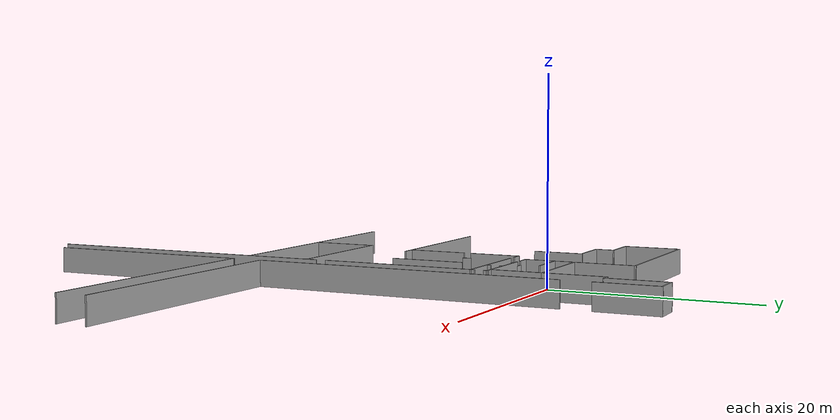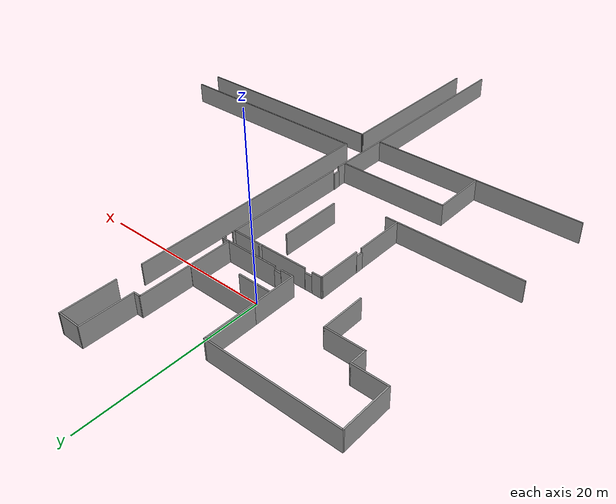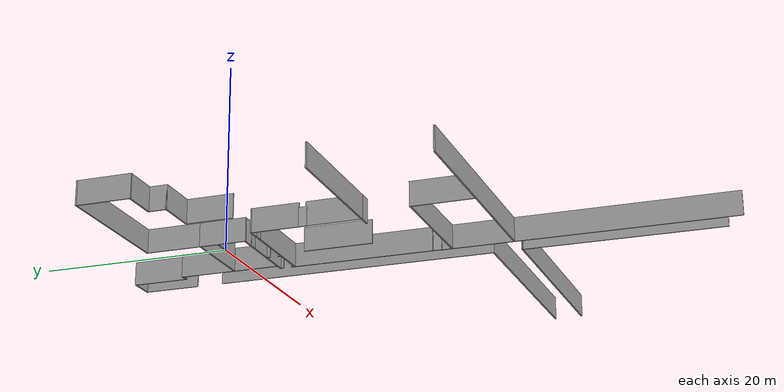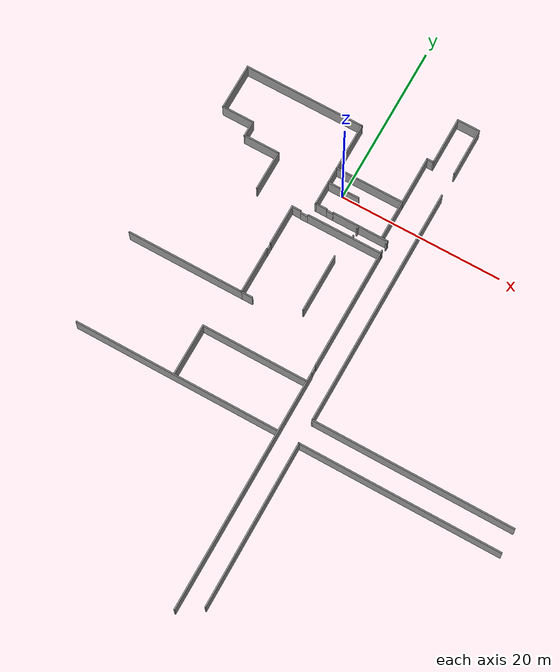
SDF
<?xml version='1.0'?>
<sdf version='1.6'>
  <model name='uia_utsnitt'>
    <pose frame=''>8.2575 -18.3173 0 0 -0 0</pose>
    <link name='Door_0'>
      <collision name='Door_0_Collision'>
        <geometry>
          <box>
            <size>0.85 0.17 2.1</size>
          </box>
        </geometry>
        <pose frame=''>0 0 1.05 0 -0 0</pose>
      </collision>
      <visual name='Door_0_Visual'>
        <pose frame=''>0 0 1.05 0 -0 0</pose>
        <geometry>
          <box>
            <size>0.85 0.17 2.1</size>
          </box>
        </geometry>
        <material>
          <script>
            <uri>file://media/materials/scripts/gazebo.material</uri>
            <name>Gazebo/Grey</name>
          </script>
        </material>
      </visual>
      <pose frame=''>-8.28427 15.3973 0 0 -0 3.11942</pose>
    </link>
    <link name='Door_1'>
      <collision name='Door_1_Collision'>
        <geometry>
          <box>
            <size>0.9 0.17 2</size>
          </box>
        </geometry>
        <pose frame=''>0 0 1 0 -0 0</pose>
      </collision>
      <visual name='Door_1_Visual'>
        <pose frame=''>0 0 1 0 -0 0</pose>
        <geometry>
          <box>
            <size>0.9 0.17 2</size>
          </box>
        </geometry>
        <material>
          <script>
            <uri>file://media/materials/scripts/gazebo.material</uri>
            <name>Gazebo/Grey</name>
          </script>
        </material>
      </visual>
      <pose frame=''>-10.6705 13.7791 0 0 -0 0</pose>
    </link>
    <link name='Door_2'>
      <collision name='Door_2_Collision'>
        <geometry>
          <box>
            <size>0.9 0.17 2</size>
          </box>
        </geometry>
        <pose frame=''>0 0 1 0 -0 0</pose>
      </collision>
      <visual name='Door_2_Visual'>
        <pose frame=''>0 0 1 0 -0 0</pose>
        <geometry>
          <box>
            <size>0.9 0.17 2</size>
          </box>
        </geometry>
        <material>
          <script>
            <uri>file://media/materials/scripts/gazebo.material</uri>
            <name>Gazebo/Grey</name>
          </script>
        </material>
      </visual>
      <pose frame=''>-12.2575 8.3993 0 0 -0 -1.55636</pose>
    </link>
    <link name='Door_3'>
      <collision name='Door_3_Collision'>
        <geometry>
          <box>
            <size>0.9 0.17 2</size>
          </box>
        </geometry>
        <pose frame=''>0 0 1 0 -0 0</pose>
      </collision>
      <visual name='Door_3_Visual'>
        <pose frame=''>0 0 1 0 -0 0</pose>
        <geometry>
          <box>
            <size>0.9 0.17 2</size>
          </box>
        </geometry>
        <material>
          <script>
            <uri>file://media/materials/scripts/gazebo.material</uri>
            <name>Gazebo/Grey</name>
          </script>
        </material>
      </visual>
      <pose frame=''>-0.985614 -1.64108 0 0 -0 1.63736</pose>
    </link>
    <link name='Wall_0'>
      <collision name='Wall_0_Collision'>
        <geometry>
          <box>
            <size>7 0.15 2.5</size>
          </box>
        </geometry>
        <pose frame=''>0 0 1.25 0 -0 0</pose>
      </collision>
      <visual name='Wall_0_Visual'>
        <pose frame=''>0 0 1.25 0 -0 0</pose>
        <geometry>
          <box>
            <size>7 0.15 2.5</size>
          </box>
        </geometry>
        <material>
          <script>
            <uri>file://media/materials/scripts/gazebo.material</uri>
            <name>Gazebo/Grey</name>
          </script>
          <ambient>1 1 1 1</ambient>
        </material>
        <meta>
          <layer>0</layer>
        </meta>
      </visual>
      <pose frame=''>-4.40229 15.3924 0 0 -0 -3.6e-05</pose>
    </link>
    <link name='Wall_101'>
      <collision name='Wall_101_Collision'>
        <geometry>
          <box>
            <size>20.6531 0.15 2.5</size>
          </box>
        </geometry>
        <pose frame=''>0 0 1.25 0 -0 0</pose>
      </collision>
      <visual name='Wall_101_Visual'>
        <pose frame=''>0 0 1.25 0 -0 0</pose>
        <geometry>
          <box>
            <size>20.6531 0.15 2.5</size>
          </box>
        </geometry>
        <material>
          <script>
            <uri>file://media/materials/scripts/gazebo.material</uri>
            <name>Gazebo/Grey</name>
          </script>
          <ambient>1 1 1 1</ambient>
        </material>
        <meta>
          <layer>0</layer>
        </meta>
      </visual>
      <pose frame=''>1.78602 -19.9342 0 0 -0 -1.56655</pose>
    </link>
    <link name='Wall_105'>
      <collision name='Wall_105_Collision'>
        <geometry>
          <box>
            <size>5.832 0.15 2.5</size>
          </box>
        </geometry>
        <pose frame=''>0 0 1.25 0 -0 0</pose>
      </collision>
      <visual name='Wall_105_Visual'>
        <pose frame=''>0 0 1.25 0 -0 0</pose>
        <geometry>
          <box>
            <size>5.832 0.15 2.5</size>
          </box>
        </geometry>
        <material>
          <script>
            <uri>file://media/materials/scripts/gazebo.material</uri>
            <name>Gazebo/Grey</name>
          </script>
          <ambient>1 1 1 1</ambient>
        </material>
        <meta>
          <layer>0</layer>
        </meta>
      </visual>
      <pose frame=''>-12.2575 5.1583 0 0 -0 -1.5708</pose>
    </link>
    <link name='Wall_107'>
      <collision name='Wall_107_Collision'>
        <geometry>
          <box>
            <size>30 0.15 2.5</size>
          </box>
        </geometry>
        <pose frame=''>0 0 1.25 0 -0 0</pose>
      </collision>
      <visual name='Wall_107_Visual'>
        <pose frame=''>0 0 1.25 0 -0 0</pose>
        <geometry>
          <box>
            <size>30 0.15 2.5</size>
          </box>
        </geometry>
        <material>
          <script>
            <uri>file://media/materials/scripts/gazebo.material</uri>
            <name>Gazebo/Grey</name>
          </script>
          <ambient>1 1 1 1</ambient>
        </material>
        <meta>
          <layer>0</layer>
        </meta>
      </visual>
      <pose frame=''>-0.912125 -17.0923 0 0 -0 -1.5708</pose>
    </link>
    <link name='Wall_109'>
      <collision name='Wall_109_Collision'>
        <geometry>
          <box>
            <size>13.25 0.15 2.5</size>
          </box>
        </geometry>
        <pose frame=''>0 0 1.25 0 -0 0</pose>
      </collision>
      <visual name='Wall_109_Visual'>
        <pose frame=''>0 0 1.25 0 -0 0</pose>
        <geometry>
          <box>
            <size>13.25 0.15 2.5</size>
          </box>
        </geometry>
        <material>
          <script>
            <uri>file://media/materials/scripts/gazebo.material</uri>
            <name>Gazebo/Grey</name>
          </script>
          <ambient>1 1 1 1</ambient>
        </material>
        <meta>
          <layer>0</layer>
        </meta>
      </visual>
      <pose frame=''>-7.46955 -3.14411 0 0 -0 3.14159</pose>
    </link>
    <link name='Wall_11'>
      <collision name='Wall_11_Collision'>
        <geometry>
          <box>
            <size>0.45 0.15 2.5</size>
          </box>
        </geometry>
        <pose frame=''>0 0 1.25 0 -0 0</pose>
      </collision>
      <visual name='Wall_11_Visual'>
        <pose frame=''>0 0 1.25 0 -0 0</pose>
        <geometry>
          <box>
            <size>0.45 0.15 2.5</size>
          </box>
        </geometry>
        <material>
          <script>
            <uri>file://media/materials/scripts/gazebo.material</uri>
            <name>Gazebo/Grey</name>
          </script>
          <ambient>1 1 1 1</ambient>
        </material>
        <meta>
          <layer>0</layer>
        </meta>
      </visual>
      <pose frame=''>-4.6134 13.9556 0 0 -0 1.5708</pose>
    </link>
    <link name='Wall_113'>
      <collision name='Wall_113_Collision'>
        <geometry>
          <box>
            <size>14.485 0.15 2.5</size>
          </box>
        </geometry>
        <pose frame=''>0 0 1.25 0 -0 0</pose>
      </collision>
      <visual name='Wall_113_Visual'>
        <pose frame=''>0 0 1.25 0 -0 0</pose>
        <geometry>
          <box>
            <size>14.485 0.15 2.5</size>
          </box>
        </geometry>
        <material>
          <script>
            <uri>file://media/materials/scripts/gazebo.material</uri>
            <name>Gazebo/Grey</name>
          </script>
          <ambient>1 1 1 1</ambient>
        </material>
        <meta>
          <layer>0</layer>
        </meta>
      </visual>
      <pose frame=''>-19.425 2.3173 0 0 -0 3.14159</pose>
    </link>
    <link name='Wall_117'>
      <collision name='Wall_117_Collision'>
        <geometry>
          <box>
            <size>25.5 0.15 2.5</size>
          </box>
        </geometry>
        <pose frame=''>0 0 1.25 0 -0 0</pose>
      </collision>
      <visual name='Wall_117_Visual'>
        <pose frame=''>0 0 1.25 0 -0 0</pose>
        <geometry>
          <box>
            <size>25.5 0.15 2.5</size>
          </box>
        </geometry>
        <material>
          <script>
            <uri>file://media/materials/scripts/gazebo.material</uri>
            <name>Gazebo/Grey</name>
          </script>
          <ambient>1 1 1 1</ambient>
        </material>
        <meta>
          <layer>0</layer>
        </meta>
      </visual>
      <pose frame=''>-13.7223 -9.55929 0 0 -0 3.14159</pose>
    </link>
    <link name='Wall_119'>
      <collision name='Wall_119_Collision'>
        <geometry>
          <box>
            <size>6.5 0.15 2.5</size>
          </box>
        </geometry>
        <pose frame=''>0 0 1.25 0 -0 0</pose>
      </collision>
      <visual name='Wall_119_Visual'>
        <pose frame=''>0 0 1.25 0 -0 0</pose>
        <geometry>
          <box>
            <size>6.5 0.15 2.5</size>
          </box>
        </geometry>
        <material>
          <script>
            <uri>file://media/materials/scripts/gazebo.material</uri>
            <name>Gazebo/Grey</name>
          </script>
          <ambient>1 1 1 1</ambient>
        </material>
        <meta>
          <layer>0</layer>
        </meta>
      </visual>
      <pose frame=''>-14.0196 -6.31911 0 0 -0 -1.5708</pose>
    </link>
    <link name='Wall_122'>
      <collision name='Wall_122_Collision'>
        <geometry>
          <box>
            <size>7.25 0.15 2.5</size>
          </box>
        </geometry>
        <pose frame=''>0 0 1.25 0 -0 0</pose>
      </collision>
      <visual name='Wall_122_Visual'>
        <pose frame=''>0 0 1.25 0 -0 0</pose>
        <geometry>
          <box>
            <size>7.25 0.15 2.5</size>
          </box>
        </geometry>
        <material>
          <script>
            <uri>file://media/materials/scripts/gazebo.material</uri>
            <name>Gazebo/Grey</name>
          </script>
          <ambient>1 1 1 1</ambient>
        </material>
        <meta>
          <layer>0</layer>
        </meta>
      </visual>
      <pose frame=''>-5.2575 7.4033 0 0 -0 1.5708</pose>
    </link>
    <link name='Wall_124'>
      <collision name='Wall_124_Collision'>
        <geometry>
          <box>
            <size>5.103 0.15 2.5</size>
          </box>
        </geometry>
        <pose frame=''>0 0 1.25 0 -0 0</pose>
      </collision>
      <visual name='Wall_124_Visual'>
        <pose frame=''>0 0 1.25 0 -0 0</pose>
        <geometry>
          <box>
            <size>5.103 0.15 2.5</size>
          </box>
        </geometry>
        <material>
          <script>
            <uri>file://media/materials/scripts/gazebo.material</uri>
            <name>Gazebo/Grey</name>
          </script>
          <ambient>1 1 1 1</ambient>
        </material>
        <meta>
          <layer>0</layer>
        </meta>
      </visual>
      <pose frame=''>-12.2575 11.3378 0 0 -0 1.5708</pose>
    </link>
    <link name='Wall_126'>
      <collision name='Wall_126_Collision'>
        <geometry>
          <box>
            <size>1.5 0.15 2.5</size>
          </box>
        </geometry>
        <pose frame=''>0 0 1.25 0 -0 0</pose>
      </collision>
      <visual name='Wall_126_Visual'>
        <pose frame=''>0 0 1.25 0 -0 0</pose>
        <geometry>
          <box>
            <size>1.5 0.15 2.5</size>
          </box>
        </geometry>
        <material>
          <script>
            <uri>file://media/materials/scripts/gazebo.material</uri>
            <name>Gazebo/Grey</name>
          </script>
          <ambient>1 1 1 1</ambient>
        </material>
        <meta>
          <layer>0</layer>
        </meta>
      </visual>
      <pose frame=''>-11.5825 2.3173 0 0 -0 0</pose>
    </link>
    <link name='Wall_13'>
      <collision name='Wall_13_Collision'>
        <geometry>
          <box>
            <size>0.45 0.15 2.5</size>
          </box>
        </geometry>
        <pose frame=''>0 0 1.25 0 -0 0</pose>
      </collision>
      <visual name='Wall_13_Visual'>
        <pose frame=''>0 0 1.25 0 -0 0</pose>
        <geometry>
          <box>
            <size>0.45 0.15 2.5</size>
          </box>
        </geometry>
        <material>
          <script>
            <uri>file://media/materials/scripts/gazebo.material</uri>
            <name>Gazebo/Grey</name>
          </script>
          <ambient>1 1 1 1</ambient>
        </material>
        <meta>
          <layer>0</layer>
        </meta>
      </visual>
      <pose frame=''>-4.6663 15.2293 0 0 -0 -1.5708</pose>
    </link>
    <link name='Wall_15'>
      <collision name='Wall_15_Collision'>
        <geometry>
          <box>
            <size>5 0.15 2.5</size>
          </box>
        </geometry>
        <pose frame=''>0 0 1.25 0 -0 0</pose>
      </collision>
      <visual name='Wall_15_Visual'>
        <pose frame=''>0 0 1.25 0 -0 0</pose>
        <geometry>
          <box>
            <size>5 0.15 2.5</size>
          </box>
        </geometry>
        <material>
          <script>
            <uri>file://media/materials/scripts/gazebo.material</uri>
            <name>Gazebo/Grey</name>
          </script>
          <ambient>1 1 1 1</ambient>
        </material>
        <meta>
          <layer>0</layer>
        </meta>
      </visual>
      <pose frame=''>-10.1163 17.8305 0 0 -0 1.57089</pose>
    </link>
    <link name='Wall_16'>
      <collision name='Wall_16_Collision'>
        <geometry>
          <box>
            <size>8.5 0.15 2.5</size>
          </box>
        </geometry>
        <pose frame=''>0 0 1.25 0 -0 0</pose>
      </collision>
      <visual name='Wall_16_Visual'>
        <pose frame=''>0 0 1.25 0 -0 0</pose>
        <geometry>
          <box>
            <size>8.5 0.15 2.5</size>
          </box>
        </geometry>
        <material>
          <script>
            <uri>file://media/materials/scripts/gazebo.material</uri>
            <name>Gazebo/Grey</name>
          </script>
          <ambient>1 1 1 1</ambient>
        </material>
        <meta>
          <layer>0</layer>
        </meta>
      </visual>
      <pose frame=''>-5.9415 20.2553 0 0 -0 0</pose>
    </link>
    <link name='Wall_19'>
      <collision name='Wall_19_Collision'>
        <geometry>
          <box>
            <size>5 0.15 2.5</size>
          </box>
        </geometry>
        <pose frame=''>0 0 1.25 0 -0 0</pose>
      </collision>
      <visual name='Wall_19_Visual'>
        <pose frame=''>0 0 1.25 0 -0 0</pose>
        <geometry>
          <box>
            <size>5 0.15 2.5</size>
          </box>
        </geometry>
        <material>
          <script>
            <uri>file://media/materials/scripts/gazebo.material</uri>
            <name>Gazebo/Grey</name>
          </script>
          <ambient>1 1 1 1</ambient>
        </material>
        <meta>
          <layer>0</layer>
        </meta>
      </visual>
      <pose frame=''>-1.7575 17.8453 0 0 -0 1.5708</pose>
    </link>
    <link name='Wall_21'>
      <collision name='Wall_21_Collision'>
        <geometry>
          <box>
            <size>4 0.15 2.5</size>
          </box>
        </geometry>
        <pose frame=''>0 0 1.25 0 -0 0</pose>
      </collision>
      <visual name='Wall_21_Visual'>
        <pose frame=''>0 0 1.25 0 -0 0</pose>
        <geometry>
          <box>
            <size>4 0.15 2.5</size>
          </box>
        </geometry>
        <material>
          <script>
            <uri>file://media/materials/scripts/gazebo.material</uri>
            <name>Gazebo/Grey</name>
          </script>
          <ambient>1 1 1 1</ambient>
        </material>
        <meta>
          <layer>0</layer>
        </meta>
      </visual>
      <pose frame=''>-8.19084 18.3102 0 0 -0 0</pose>
    </link>
    <link name='Wall_23'>
      <collision name='Wall_23_Collision'>
        <geometry>
          <box>
            <size>6 0.15 2.5</size>
          </box>
        </geometry>
        <pose frame=''>0 0 1.25 0 -0 0</pose>
      </collision>
      <visual name='Wall_23_Visual'>
        <pose frame=''>0 0 1.25 0 -0 0</pose>
        <geometry>
          <box>
            <size>6 0.15 2.5</size>
          </box>
        </geometry>
        <material>
          <script>
            <uri>file://media/materials/scripts/gazebo.material</uri>
            <name>Gazebo/Grey</name>
          </script>
          <ambient>1 1 1 1</ambient>
        </material>
        <meta>
          <layer>0</layer>
        </meta>
      </visual>
      <pose frame=''>-10.1165 23.1803 0 0 -0 1.5708</pose>
    </link>
    <link name='Wall_24'>
      <collision name='Wall_24_Collision'>
        <geometry>
          <box>
            <size>15 0.15 2.5</size>
          </box>
        </geometry>
        <pose frame=''>0 0 1.25 0 -0 0</pose>
      </collision>
      <visual name='Wall_24_Visual'>
        <pose frame=''>0 0 1.25 0 -0 0</pose>
        <geometry>
          <box>
            <size>15 0.15 2.5</size>
          </box>
        </geometry>
        <material>
          <script>
            <uri>file://media/materials/scripts/gazebo.material</uri>
            <name>Gazebo/Grey</name>
          </script>
          <ambient>1 1 1 1</ambient>
        </material>
        <meta>
          <layer>0</layer>
        </meta>
      </visual>
      <pose frame=''>-17.5415 26.1053 0 0 -0 3.14159</pose>
    </link>
    <link name='Wall_25'>
      <collision name='Wall_25_Collision'>
        <geometry>
          <box>
            <size>5.75 0.15 2.5</size>
          </box>
        </geometry>
        <pose frame=''>0 0 1.25 0 -0 0</pose>
      </collision>
      <visual name='Wall_25_Visual'>
        <pose frame=''>0 0 1.25 0 -0 0</pose>
        <geometry>
          <box>
            <size>5.75 0.15 2.5</size>
          </box>
        </geometry>
        <material>
          <script>
            <uri>file://media/materials/scripts/gazebo.material</uri>
            <name>Gazebo/Grey</name>
          </script>
          <ambient>1 1 1 1</ambient>
        </material>
        <meta>
          <layer>0</layer>
        </meta>
      </visual>
      <pose frame=''>-24.9665 23.3053 0 0 -0 -1.5708</pose>
    </link>
    <link name='Wall_26'>
      <collision name='Wall_26_Collision'>
        <geometry>
          <box>
            <size>4 0.15 2.5</size>
          </box>
        </geometry>
        <pose frame=''>0 0 1.25 0 -0 0</pose>
      </collision>
      <visual name='Wall_26_Visual'>
        <pose frame=''>0 0 1.25 0 -0 0</pose>
        <geometry>
          <box>
            <size>4 0.15 2.5</size>
          </box>
        </geometry>
        <material>
          <script>
            <uri>file://media/materials/scripts/gazebo.material</uri>
            <name>Gazebo/Grey</name>
          </script>
          <ambient>1 1 1 1</ambient>
        </material>
        <meta>
          <layer>0</layer>
        </meta>
      </visual>
      <pose frame=''>-23.0415 20.5053 0 0 -0 0</pose>
    </link>
    <link name='Wall_27'>
      <collision name='Wall_27_Collision'>
        <geometry>
          <box>
            <size>2 0.15 2.5</size>
          </box>
        </geometry>
        <pose frame=''>0 0 1.25 0 -0 0</pose>
      </collision>
      <visual name='Wall_27_Visual'>
        <pose frame=''>0 0 1.25 0 -0 0</pose>
        <geometry>
          <box>
            <size>2 0.15 2.5</size>
          </box>
        </geometry>
        <material>
          <script>
            <uri>file://media/materials/scripts/gazebo.material</uri>
            <name>Gazebo/Grey</name>
          </script>
          <ambient>1 1 1 1</ambient>
        </material>
        <meta>
          <layer>0</layer>
        </meta>
      </visual>
      <pose frame=''>-21.1165 19.5803 0 0 -0 -1.5708</pose>
    </link>
    <link name='Wall_28'>
      <collision name='Wall_28_Collision'>
        <geometry>
          <box>
            <size>4.5 0.15 2.5</size>
          </box>
        </geometry>
        <pose frame=''>0 0 1.25 0 -0 0</pose>
      </collision>
      <visual name='Wall_28_Visual'>
        <pose frame=''>0 0 1.25 0 -0 0</pose>
        <geometry>
          <box>
            <size>4.5 0.15 2.5</size>
          </box>
        </geometry>
        <material>
          <script>
            <uri>file://media/materials/scripts/gazebo.material</uri>
            <name>Gazebo/Grey</name>
          </script>
          <ambient>1 1 1 1</ambient>
        </material>
        <meta>
          <layer>0</layer>
        </meta>
      </visual>
      <pose frame=''>-18.9415 18.6553 0 0 -0 0</pose>
    </link>
    <link name='Wall_29'>
      <collision name='Wall_29_Collision'>
        <geometry>
          <box>
            <size>5 0.15 2.5</size>
          </box>
        </geometry>
        <pose frame=''>0 0 1.25 0 -0 0</pose>
      </collision>
      <visual name='Wall_29_Visual'>
        <pose frame=''>0 0 1.25 0 -0 0</pose>
        <geometry>
          <box>
            <size>5 0.15 2.5</size>
          </box>
        </geometry>
        <material>
          <script>
            <uri>file://media/materials/scripts/gazebo.material</uri>
            <name>Gazebo/Grey</name>
          </script>
          <ambient>1 1 1 1</ambient>
        </material>
        <meta>
          <layer>0</layer>
        </meta>
      </visual>
      <pose frame=''>-16.7665 16.2303 0 0 -0 -1.5708</pose>
    </link>
    <link name='Wall_3'>
      <collision name='Wall_3_Collision'>
        <geometry>
          <box>
            <size>9.3 0.15 2.5</size>
          </box>
        </geometry>
        <pose frame=''>0 0 1.25 0 -0 0</pose>
      </collision>
      <visual name='Wall_3_Visual'>
        <pose frame=''>0 0 1.25 0 -0 0</pose>
        <geometry>
          <box>
            <size>9.3 0.15 2.5</size>
          </box>
        </geometry>
        <material>
          <script>
            <uri>file://media/materials/scripts/gazebo.material</uri>
            <name>Gazebo/Grey</name>
          </script>
          <ambient>1 1 1 1</ambient>
        </material>
        <meta>
          <layer>0</layer>
        </meta>
      </visual>
      <pose frame=''>-5.55229 13.7924 0 0 -0 3.14156</pose>
    </link>
    <link name='Wall_31'>
      <collision name='Wall_31_Collision'>
        <geometry>
          <box>
            <size>1.23426 0.15 2.5</size>
          </box>
        </geometry>
        <pose frame=''>0 0 1.25 0 -0 0</pose>
      </collision>
      <visual name='Wall_31_Visual'>
        <pose frame=''>0 0 1.25 0 -0 0</pose>
        <geometry>
          <box>
            <size>1.23426 0.15 2.5</size>
          </box>
        </geometry>
        <material>
          <script>
            <uri>file://media/materials/scripts/gazebo.material</uri>
            <name>Gazebo/Grey</name>
          </script>
          <ambient>1 1 1 1</ambient>
        </material>
        <meta>
          <layer>0</layer>
        </meta>
      </visual>
      <pose frame=''>-11.7154 13.8145 0 0 -0 -3.14119</pose>
    </link>
    <link name='Wall_33'>
      <collision name='Wall_33_Collision'>
        <geometry>
          <box>
            <size>15 0.15 2.5</size>
          </box>
        </geometry>
        <pose frame=''>0 0 1.25 0 -0 0</pose>
      </collision>
      <visual name='Wall_33_Visual'>
        <pose frame=''>0 0 1.25 0 -0 0</pose>
        <geometry>
          <box>
            <size>15 0.15 2.5</size>
          </box>
        </geometry>
        <material>
          <script>
            <uri>file://media/materials/scripts/gazebo.material</uri>
            <name>Gazebo/Grey</name>
          </script>
          <ambient>1 1 1 1</ambient>
        </material>
        <meta>
          <layer>0</layer>
        </meta>
      </visual>
      <pose frame=''>-0.977499 6.3673 0 0 -0 -1.5708</pose>
    </link>
    <link name='Wall_35'>
      <collision name='Wall_35_Collision'>
        <geometry>
          <box>
            <size>6.047 0.15 2.5</size>
          </box>
        </geometry>
        <pose frame=''>0 0 1.25 0 -0 0</pose>
      </collision>
      <visual name='Wall_35_Visual'>
        <pose frame=''>0 0 1.25 0 -0 0</pose>
        <geometry>
          <box>
            <size>6.047 0.15 2.5</size>
          </box>
        </geometry>
        <material>
          <script>
            <uri>file://media/materials/scripts/gazebo.material</uri>
            <name>Gazebo/Grey</name>
          </script>
          <ambient>1 1 1 1</ambient>
        </material>
        <meta>
          <layer>0</layer>
        </meta>
      </visual>
      <pose frame=''>-1.7575 23.2188 0 0 -0 1.5708</pose>
    </link>
    <link name='Wall_37'>
      <collision name='Wall_37_Collision'>
        <geometry>
          <box>
            <size>0.95 0.15 2.5</size>
          </box>
        </geometry>
        <pose frame=''>0 0 1.25 0 -0 0</pose>
      </collision>
      <visual name='Wall_37_Visual'>
        <pose frame=''>0 0 1.25 0 -0 0</pose>
        <geometry>
          <box>
            <size>0.95 0.15 2.5</size>
          </box>
        </geometry>
        <material>
          <script>
            <uri>file://media/materials/scripts/gazebo.material</uri>
            <name>Gazebo/Grey</name>
          </script>
          <ambient>1 1 1 1</ambient>
        </material>
        <meta>
          <layer>0</layer>
        </meta>
      </visual>
      <pose frame=''>-1.3575 26.1673 0 0 -0 0</pose>
    </link>
    <link name='Wall_41'>
      <collision name='Wall_41_Collision'>
        <geometry>
          <box>
            <size>6 0.15 2.5</size>
          </box>
        </geometry>
        <pose frame=''>0 0 1.25 0 -0 0</pose>
      </collision>
      <visual name='Wall_41_Visual'>
        <pose frame=''>0 0 1.25 0 -0 0</pose>
        <geometry>
          <box>
            <size>6 0.15 2.5</size>
          </box>
        </geometry>
        <material>
          <script>
            <uri>file://media/materials/scripts/gazebo.material</uri>
            <name>Gazebo/Grey</name>
          </script>
          <ambient>1 1 1 1</ambient>
        </material>
        <meta>
          <layer>0</layer>
        </meta>
      </visual>
      <pose frame=''>-0.9575 29.0923 0 0 -0 1.5708</pose>
    </link>
    <link name='Wall_43'>
      <collision name='Wall_43_Collision'>
        <geometry>
          <box>
            <size>2.85 0.15 2.5</size>
          </box>
        </geometry>
        <pose frame=''>0 0 1.25 0 -0 0</pose>
      </collision>
      <visual name='Wall_43_Visual'>
        <pose frame=''>0 0 1.25 0 -0 0</pose>
        <geometry>
          <box>
            <size>2.85 0.15 2.5</size>
          </box>
        </geometry>
        <material>
          <script>
            <uri>file://media/materials/scripts/gazebo.material</uri>
            <name>Gazebo/Grey</name>
          </script>
          <ambient>1 1 1 1</ambient>
        </material>
        <meta>
          <layer>0</layer>
        </meta>
      </visual>
      <pose frame=''>0.3925 32.0173 0 0 -0 0</pose>
    </link>
    <link name='Wall_5'>
      <collision name='Wall_5_Collision'>
        <geometry>
          <box>
            <size>1.5 0.15 2.5</size>
          </box>
        </geometry>
        <pose frame=''>0 0 1.25 0 -0 0</pose>
      </collision>
      <visual name='Wall_5_Visual'>
        <pose frame=''>0 0 1.25 0 -0 0</pose>
        <geometry>
          <box>
            <size>1.5 0.15 2.5</size>
          </box>
        </geometry>
        <material>
          <script>
            <uri>file://media/materials/scripts/gazebo.material</uri>
            <name>Gazebo/Grey</name>
          </script>
          <ambient>1 1 1 1</ambient>
        </material>
        <meta>
          <layer>0</layer>
        </meta>
      </visual>
      <pose frame=''>-9.44105 15.4058 0 0 -0 3.14159</pose>
    </link>
    <link name='Wall_7'>
      <collision name='Wall_7_Collision'>
        <geometry>
          <box>
            <size>0.45 0.15 2.5</size>
          </box>
        </geometry>
        <pose frame=''>0 0 1.25 0 -0 0</pose>
      </collision>
      <visual name='Wall_7_Visual'>
        <pose frame=''>0 0 1.25 0 -0 0</pose>
        <geometry>
          <box>
            <size>0.45 0.15 2.5</size>
          </box>
        </geometry>
        <material>
          <script>
            <uri>file://media/materials/scripts/gazebo.material</uri>
            <name>Gazebo/Grey</name>
          </script>
          <ambient>1 1 1 1</ambient>
        </material>
        <meta>
          <layer>0</layer>
        </meta>
      </visual>
      <pose frame=''>-0.977499 15.2423 0 0 -0 -1.5708</pose>
    </link>
    <link name='Wall_9'>
      <collision name='Wall_9_Collision'>
        <geometry>
          <box>
            <size>0.45 0.15 2.5</size>
          </box>
        </geometry>
        <pose frame=''>0 0 1.25 0 -0 0</pose>
      </collision>
      <visual name='Wall_9_Visual'>
        <pose frame=''>0 0 1.25 0 -0 0</pose>
        <geometry>
          <box>
            <size>0.45 0.15 2.5</size>
          </box>
        </geometry>
        <material>
          <script>
            <uri>file://media/materials/scripts/gazebo.material</uri>
            <name>Gazebo/Grey</name>
          </script>
          <ambient>1 1 1 1</ambient>
        </material>
        <meta>
          <layer>0</layer>
        </meta>
      </visual>
      <pose frame=''>-0.977499 13.9423 0 0 -0 1.5708</pose>
    </link>
    <link name='Wall_93'>
      <collision name='Wall_93_Collision'>
        <geometry>
          <box>
            <size>6.05 0.15 2.5</size>
          </box>
        </geometry>
        <pose frame=''>0 0 1.25 0 -0 0</pose>
      </collision>
      <visual name='Wall_93_Visual'>
        <pose frame=''>0 0 1.25 0 -0 0</pose>
        <geometry>
          <box>
            <size>6.05 0.15 2.5</size>
          </box>
        </geometry>
        <material>
          <script>
            <uri>file://media/materials/scripts/gazebo.material</uri>
            <name>Gazebo/Grey</name>
          </script>
          <ambient>1 1 1 1</ambient>
        </material>
        <meta>
          <layer>0</layer>
        </meta>
      </visual>
      <pose frame=''>1.7425 29.0673 0 0 -0 -1.5708</pose>
    </link>
    <link name='Wall_95'>
      <collision name='Wall_95_Collision'>
        <geometry>
          <box>
            <size>29.95 0.15 2.5</size>
          </box>
        </geometry>
        <pose frame=''>0 0 1.25 0 -0 0</pose>
      </collision>
      <visual name='Wall_95_Visual'>
        <pose frame=''>0 0 1.25 0 -0 0</pose>
        <geometry>
          <box>
            <size>29.95 0.15 2.5</size>
          </box>
        </geometry>
        <material>
          <script>
            <uri>file://media/materials/scripts/gazebo.material</uri>
            <name>Gazebo/Grey</name>
          </script>
          <ambient>1 1 1 1</ambient>
        </material>
        <meta>
          <layer>0</layer>
        </meta>
      </visual>
      <pose frame=''>1.7425 8.2173 0 0 -0 -1.5708</pose>
    </link>
    <link name='Wall_97'>
      <collision name='Wall_97_Collision'>
        <geometry>
          <box>
            <size>25 0.15 2.5</size>
          </box>
        </geometry>
        <pose frame=''>0 0 1.25 0 -0 0</pose>
      </collision>
      <visual name='Wall_97_Visual'>
        <pose frame=''>0 0 1.25 0 -0 0</pose>
        <geometry>
          <box>
            <size>25 0.15 2.5</size>
          </box>
        </geometry>
        <material>
          <script>
            <uri>file://media/materials/scripts/gazebo.material</uri>
            <name>Gazebo/Grey</name>
          </script>
          <ambient>1 1 1 1</ambient>
        </material>
        <meta>
          <layer>0</layer>
        </meta>
      </visual>
      <pose frame=''>14.1675 -6.6827 0 0 -0 0</pose>
    </link>
    <link name='Wall_99'>
      <collision name='Wall_99_Collision'>
        <geometry>
          <box>
            <size>25 0.15 2.5</size>
          </box>
        </geometry>
        <pose frame=''>0 0 1.25 0 -0 0</pose>
      </collision>
      <visual name='Wall_99_Visual'>
        <pose frame=''>0 0 1.25 0 -0 0</pose>
        <geometry>
          <box>
            <size>25 0.15 2.5</size>
          </box>
        </geometry>
        <material>
          <script>
            <uri>file://media/materials/scripts/gazebo.material</uri>
            <name>Gazebo/Grey</name>
          </script>
          <ambient>1 1 1 1</ambient>
        </material>
        <meta>
          <layer>0</layer>
        </meta>
      </visual>
      <pose frame=''>14.1675 -9.6827 0 0 -0 0</pose>
    </link>
    <static>1</static>
  </model>
</sdf>
